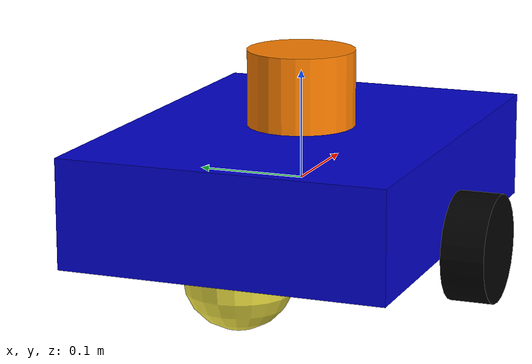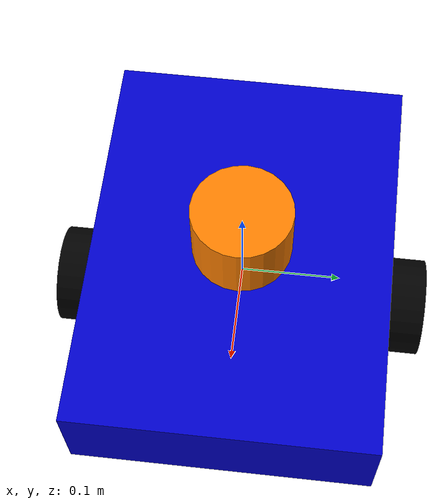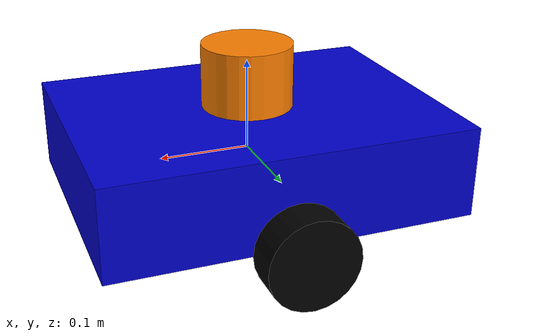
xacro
<?xml version="1.0"?>
<robot name="my_bot" xmlns:xacro="http://www.ros.org/wiki/xacro">

  <!-- ================= 参数定义 ================= -->
  <xacro:property name="chassis_len" value="0.4" />
  <xacro:property name="chassis_width" value="0.3" />
  <xacro:property name="chassis_height" value="0.1" />
  <xacro:property name="wheel_radius" value="0.05" />

  <!-- 惯性矩阵宏 (物理引擎防炸关键) -->
  <xacro:macro name="box_inertia" params="m w h d">
    <inertial>
      <mass value="${m}"/>
      <inertia ixx="${m / 12.0 * (d*d + h*h)}" ixy="0.0" ixz="0.0" iyy="${m / 12.0 * (w*w + h*h)}" iyz="0.0" izz="${m / 12.0 * (w*w + d*d)}"/>
    </inertial>
  </xacro:macro>

  <!-- ================= 1. 底盘 (Base Link) ================= -->
  <link name="base_link">
    <visual>
      <geometry>
        <box size="${chassis_len} ${chassis_width} ${chassis_height}"/>
      </geometry>
      <material name="blue">
        <color rgba="0 0 0.8 1"/>
      </material>
    </visual>
    <collision>
      <geometry>
        <box size="${chassis_len} ${chassis_width} ${chassis_height}"/>
      </geometry>
    </collision>
    <xacro:box_inertia m="5.0" w="${chassis_len}" h="${chassis_height}" d="${chassis_width}"/>
  </link>

  <!-- ================= 2. 轮子 (Diff Drive) ================= -->
  <!-- 左轮 -->
  <link name="left_wheel">
    <visual>
      <geometry><cylinder radius="${wheel_radius}" length="0.04"/></geometry>
      <material name="black"><color rgba="0 0 0 1"/></material>
    </visual>
    <collision>
      <geometry><cylinder radius="${wheel_radius}" length="0.04"/></geometry>
    </collision>
    <inertial>
      <mass value="1.0"/>
      <inertia ixx="0.1" ixy="0" ixz="0" iyy="0.1" iyz="0" izz="0.1"/>
    </inertial>
  </link>

  <joint name="left_wheel_joint" type="continuous">
    <parent link="base_link"/>
    <child link="left_wheel"/>
    <origin xyz="0 0.17 -0.05" rpy="-1.5707 0 0"/>
    <axis xyz="0 0 1"/>
  </joint>

  <!-- 右轮 -->
  <link name="right_wheel">
    <visual>
      <geometry><cylinder radius="${wheel_radius}" length="0.04"/></geometry>
      <material name="black"><color rgba="0 0 0 1"/></material>
    </visual>
    <collision>
      <geometry><cylinder radius="${wheel_radius}" length="0.04"/></geometry>
    </collision>
    <inertial>
      <mass value="1.0"/>
      <inertia ixx="0.1" ixy="0" ixz="0" iyy="0.1" iyz="0" izz="0.1"/>
    </inertial>
  </link>

  <joint name="right_wheel_joint" type="continuous">
    <parent link="base_link"/>
    <child link="right_wheel"/>
    <origin xyz="0 -0.17 -0.05" rpy="-1.5707 0 0"/>
    <axis xyz="0 0 1"/>
  </joint>

  <!-- 万向轮 (支撑轮) -->
  <link name="caster_wheel">
    <visual>
      <geometry><sphere radius="0.05"/></geometry>
    </visual>
    <collision>
      <geometry><sphere radius="0.05"/></geometry>
      <surface>
        <friction>
          <ode><mu>0.0</mu><mu2>0.0</mu2></ode> <!-- 摩擦力设为0，防止卡住 -->
        </friction>
      </surface>
    </collision>
    <inertial>
      <mass value="0.5"/>
      <inertia ixx="0.01" ixy="0" ixz="0" iyy="0.01" iyz="0" izz="0.01"/>
    </inertial>
  </link>

  <joint name="caster_joint" type="fixed">
    <parent link="base_link"/>
    <child link="caster_wheel"/>
    <origin xyz="-0.15 0 -0.05"/>
  </joint>

  <!-- ================= 3. 传感器: 3D LiDAR (关键!) ================= -->
  <link name="velodyne">
    <visual>
      <geometry><cylinder radius="0.05" length="0.07"/></geometry>
      <material name="orange"><color rgba="1 0.5 0 1"/></material>
    </visual>
    <inertial>
      <mass value="0.1"/>
      <inertia ixx="0.001" ixy="0" ixz="0" iyy="0.001" iyz="0" izz="0.001"/>
    </inertial>
  </link>

  <joint name="velodyne_joint" type="fixed">
    <parent link="base_link"/>
    <child link="velodyne"/>
    <origin xyz="0 0 0.085" rpy="0 0 0"/>
  </joint>

  <!-- Gazebo LiDAR 插件 -->
  <gazebo reference="velodyne">
    <sensor type="ray" name="velodyne-VLP16">
      <pose>0 0 0 0 0 0</pose>
      <visualize>false</visualize>
      <update_rate>10</update_rate>
      <ray>
        <scan>
          <horizontal>
            <samples>440</samples> <!-- 水平分辨率 -->
            <resolution>1</resolution>
            <min_angle>-3.14159</min_angle>
            <max_angle>3.14159</max_angle>
          </horizontal>
          <vertical>
            <samples>16</samples> <!-- 垂直16线，这就叫3D雷达 -->
            <resolution>1</resolution>
            <min_angle>-0.26</min_angle>
            <max_angle>0.26</max_angle>
          </vertical>
        </scan>
        <range>
          <min>0.3</min>
          <max>100.0</max>
          <resolution>0.001</resolution>
        </range>
        <noise>
          <type>gaussian</type>
          <mean>0.0</mean>
          <stddev>0.01</stddev>
        </noise>
      </ray>
      <!-- 重点：加载 Velodyne 插件，输出 PointCloud2 -->
      <plugin name="gazebo_ros_laser_controller" filename="libgazebo_ros_velodyne_laser.so">
        <topicName>/velodyne_points</topicName> <!-- CMU算法需要的话题 -->
        <frameName>velodyne</frameName>
        <min_range>0.3</min_range>
        <max_range>130.0</max_range>
        <gaussianNoise>0.008</gaussianNoise>
      </plugin>
    </sensor>
  </gazebo>

  <!-- ================= 4. 传感器: IMU (关键!) ================= -->
  <link name="imu_link"/>
  <joint name="imu_joint" type="fixed">
    <parent link="base_link"/>
    <child link="imu_link"/>
    <origin xyz="0 0 0" rpy="0 0 0"/>
  </joint>

  <gazebo reference="imu_link">
    <gravity>true</gravity>
    <sensor name="imu_sensor" type="imu">
      <always_on>true</always_on>
      <update_rate>500</update_rate>
      <visualize>true</visualize>
      <topic>__default_topic__</topic>
      <plugin filename="libgazebo_ros_imu_sensor.so" name="imu_plugin">
        <topicName>/imu/data</topicName>
        <bodyName>imu_link</bodyName>
        <updateRateHZ>500.0</updateRateHZ>
        <gaussianNoise>0.0</gaussianNoise>
        <xyzOffset>0 0 0</xyzOffset>
        <rpyOffset>0 0 0</rpyOffset>
        <frameName>imu_link</frameName>
      </plugin>
    </sensor>
  </gazebo>

  <!-- ================= 5. 运动控制插件 (Diff Drive) ================= -->
  <gazebo>
    <plugin name="differential_drive_controller" filename="libgazebo_ros_diff_drive.so">
      <updateRate>50</updateRate>
      <leftJoint>left_wheel_joint</leftJoint>
      <rightJoint>right_wheel_joint</rightJoint>
      <wheelSeparation>0.34</wheelSeparation>
      <wheelDiameter>0.1</wheelDiameter>
      <wheelAcceleration>1.0</wheelAcceleration>
      <wheelTorque>20</wheelTorque>
      <commandTopic>cmd_vel</commandTopic> <!-- Local Planner 只需要发给这里 -->
      <odometryTopic>odom</odometryTopic>
      <odometryFrame>odom</odometryFrame>
      <robotBaseFrame>base_link</robotBaseFrame>
      <publishWheelTF>false</publishWheelTF>
      <publishOdomTF>false</publishOdomTF> <!-- LIO-SAM owns odom -> base_link. -->
      <publishWheelJointState>true</publishWheelJointState>
    </plugin>
  </gazebo>

</robot>
